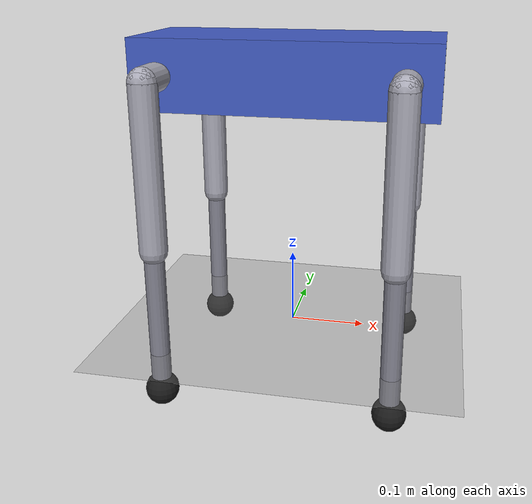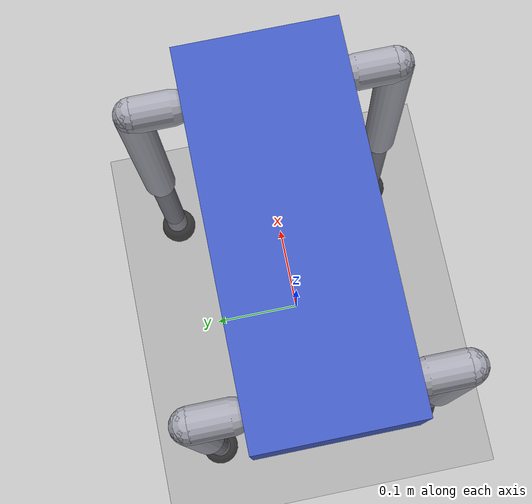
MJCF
<mujoco model="dal_quadruped">

  <compiler angle="radian" autolimits="true"/>

  <option timestep="0.002" gravity="0 0 -9.81" integrator="RK4"/>

  <default>
    <joint damping="0.2" armature="0.01" frictionloss="0.1"/>
    <geom conaffinity="1" condim="3" friction="0.8 0.005 0.0001"/>
    <motor ctrllimited="true" ctrlrange="-18 18" gear="1"/>
  </default>

  <asset>
    <texture name="floor_tex" type="2d" builtin="checker"
             width="512" height="512"
             rgb1="0.55 0.55 0.55" rgb2="0.45 0.45 0.45"/>
    <material name="floor_mat" texture="floor_tex" texrepeat="6 6" reflectance="0.05"/>
    <material name="body_mat"  rgba="0.25 0.35 0.75 1"/>
    <material name="thigh_mat" rgba="0.65 0.65 0.70 1"/>
    <material name="shank_mat" rgba="0.50 0.50 0.55 1"/>
    <material name="foot_mat"  rgba="0.10 0.10 0.10 1"/>
  </asset>

  <worldbody>
    <light name="main_light"  pos="0 0 4"   dir="0 0 -1"   diffuse="0.7 0.7 0.7" specular="0.1 0.1 0.1"/>
    <light name="fill_light"  pos="2 2 2"   dir="-1 -1 -1" diffuse="0.3 0.3 0.3"/>
    <light name="back_light"  pos="-2 -2 2" dir="1 1 -1"   diffuse="0.2 0.2 0.2"/>

    <geom name="floor" type="plane" size="6 6 0.1" material="floor_mat"/>

    <body name="torso" pos="0 0 0.35">
      <freejoint name="root"/>
      <geom name="torso_geom" type="box" size="0.19 0.08 0.045" material="body_mat"/>
      <site name="imu" pos="0 0 0" size="0.005"/>

      <!-- ============================================================
           FRONT LEFT LEG
           ============================================================ -->
      <body name="FL_hip_housing" pos="0.15 0.09 0">
        <joint name="FL_hip_ab" type="hinge" axis="1 0 0" range="-0.8 0.8"/>
        <geom type="capsule" size="0.018" fromto="0 0 0 0 0.04 0" material="thigh_mat"/>
        <body name="FL_thigh" pos="0 0.04 0">
          <joint name="FL_hip_fe" type="hinge" axis="0 1 0" range="-1.57 1.57"/>
          <geom type="capsule" size="0.018" fromto="0 0 0 0 0 -0.209" material="thigh_mat"/>
          <body name="FL_shank" pos="0 0 -0.209">
            <joint name="FL_knee" type="hinge" axis="0 1 0" range="-2.6 -0.1"/>
            <geom type="capsule" size="0.013" fromto="0 0 0 0 0 -0.195" material="shank_mat"/>
            <body name="FL_foot" pos="0 0 -0.195">
              <geom name="FL_foot_geom" type="sphere" size="0.022" material="foot_mat"/>
            </body>
          </body>
        </body>
      </body>

      <!-- ============================================================
           FRONT RIGHT LEG
           ============================================================ -->
      <body name="FR_hip_housing" pos="0.15 -0.09 0">
        <joint name="FR_hip_ab" type="hinge" axis="1 0 0" range="-0.8 0.8"/>
        <geom type="capsule" size="0.018" fromto="0 0 0 0 -0.04 0" material="thigh_mat"/>
        <body name="FR_thigh" pos="0 -0.04 0">
          <joint name="FR_hip_fe" type="hinge" axis="0 1 0" range="-1.57 1.57"/>
          <geom type="capsule" size="0.018" fromto="0 0 0 0 0 -0.209" material="thigh_mat"/>
          <body name="FR_shank" pos="0 0 -0.209">
            <joint name="FR_knee" type="hinge" axis="0 1 0" range="-2.6 -0.1"/>
            <geom type="capsule" size="0.013" fromto="0 0 0 0 0 -0.195" material="shank_mat"/>
            <body name="FR_foot" pos="0 0 -0.195">
              <geom name="FR_foot_geom" type="sphere" size="0.022" material="foot_mat"/>
            </body>
          </body>
        </body>
      </body>

      <!-- ============================================================
           REAR LEFT LEG
           ============================================================ -->
      <body name="RL_hip_housing" pos="-0.15 0.09 0">
        <joint name="RL_hip_ab" type="hinge" axis="1 0 0" range="-0.8 0.8"/>
        <geom type="capsule" size="0.018" fromto="0 0 0 0 0.04 0" material="thigh_mat"/>
        <body name="RL_thigh" pos="0 0.04 0">
          <joint name="RL_hip_fe" type="hinge" axis="0 1 0" range="-1.57 1.57"/>
          <geom type="capsule" size="0.018" fromto="0 0 0 0 0 -0.209" material="thigh_mat"/>
          <body name="RL_shank" pos="0 0 -0.209">
            <joint name="RL_knee" type="hinge" axis="0 1 0" range="-2.6 -0.1"/>
            <geom type="capsule" size="0.013" fromto="0 0 0 0 0 -0.195" material="shank_mat"/>
            <body name="RL_foot" pos="0 0 -0.195">
              <geom name="RL_foot_geom" type="sphere" size="0.022" material="foot_mat"/>
            </body>
          </body>
        </body>
      </body>

      <!-- ============================================================
           REAR RIGHT LEG
           ============================================================ -->
      <body name="RR_hip_housing" pos="-0.15 -0.09 0">
        <joint name="RR_hip_ab" type="hinge" axis="1 0 0" range="-0.8 0.8"/>
        <geom type="capsule" size="0.018" fromto="0 0 0 0 -0.04 0" material="thigh_mat"/>
        <body name="RR_thigh" pos="0 -0.04 0">
          <joint name="RR_hip_fe" type="hinge" axis="0 1 0" range="-1.57 1.57"/>
          <geom type="capsule" size="0.018" fromto="0 0 0 0 0 -0.209" material="thigh_mat"/>
          <body name="RR_shank" pos="0 0 -0.209">
            <joint name="RR_knee" type="hinge" axis="0 1 0" range="-2.6 -0.1"/>
            <geom type="capsule" size="0.013" fromto="0 0 0 0 0 -0.195" material="shank_mat"/>
            <body name="RR_foot" pos="0 0 -0.195">
              <geom name="RR_foot_geom" type="sphere" size="0.022" material="foot_mat"/>
            </body>
          </body>
        </body>
      </body>

    </body>
  </worldbody>

  <actuator>
    <motor name="FL_hip_ab_act" joint="FL_hip_ab"/>
    <motor name="FL_hip_fe_act" joint="FL_hip_fe"/>
    <motor name="FL_knee_act"   joint="FL_knee"/>
    <motor name="FR_hip_ab_act" joint="FR_hip_ab"/>
    <motor name="FR_hip_fe_act" joint="FR_hip_fe"/>
    <motor name="FR_knee_act"   joint="FR_knee"/>
    <motor name="RL_hip_ab_act" joint="RL_hip_ab"/>
    <motor name="RL_hip_fe_act" joint="RL_hip_fe"/>
    <motor name="RL_knee_act"   joint="RL_knee"/>
    <motor name="RR_hip_ab_act" joint="RR_hip_ab"/>
    <motor name="RR_hip_fe_act" joint="RR_hip_fe"/>
    <motor name="RR_knee_act"   joint="RR_knee"/>
  </actuator>

  <!-- IMU sensors on torso -->
  <sensor>
    <accelerometer name="imu_accel" site="imu"/>
    <gyro          name="imu_gyro"  site="imu"/>
  </sensor>

  <!-- Standing pose keyframe -->
  <keyframe>
    <key name="stand"
         qpos="0 0 0.32
               1 0 0 0
               0  0.65 -1.3
               0  0.65 -1.3
               0  0.65 -1.3
               0  0.65 -1.3"
         ctrl="0 0 0  0 0 0  0 0 0  0 0 0"/>
  </keyframe>

</mujoco>
